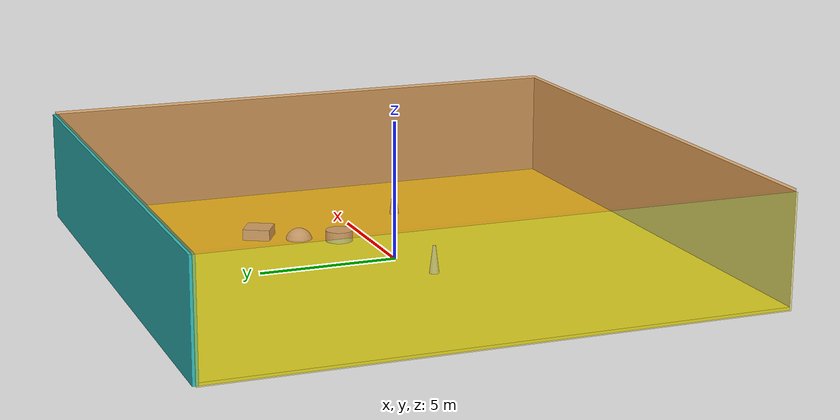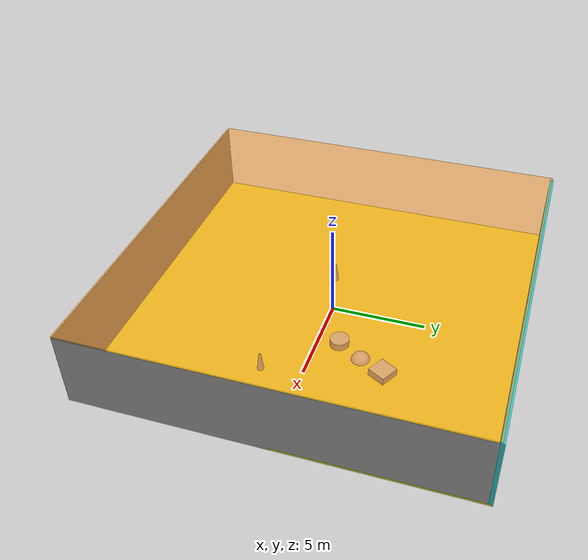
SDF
<sdf version="1.4">
 <world name="default">
  <physics type="ode">
   <max_step_size>0.001</max_step_size>
   <real_time_factor>1</real_time_factor>
   <real_time_update_rate>1000</real_time_update_rate>
   <gravity>0 0 -9.8</gravity>
  </physics>
  <scene><ambient>0.4 0.4 0.4 1</ambient><background>0.7 0.7 0.7 1</background><shadows>1</shadows></scene>
  <model name="Surrounding">
   <static>1</static>
   <link name="Ceiling">
    <collision name="Ceiling_Collision"><geometry><box><size>20 20 0.1</size></box></geometry></collision>
    <visual name="Ceiling_Visual">
     <geometry><box><size>20 20 0.1</size></box></geometry>
     <material>
      <script>
       <uri>file://media/materials/scripts/gazebo.material</uri>
       <name>Gazebo/OrangeTransparent</name>
      </script>
     </material>
    </visual>
    <pose>0 0 4.05 0 0 0</pose>
   </link>
   <link name="Wall_South">
    <collision name="Wall_South_Collision">
     <geometry><box><size>20 0 4</size></box></geometry>
     <pose>0 0 2 0 -0 0</pose>
    </collision>
    <visual name="Wall_South_Visual">
     <pose>0 0 2 0 -0 0</pose>
     <geometry><box><size>20 0 4</size></box></geometry>
     <material>
      <script><uri>file://media/materials/scripts/gazebo.material</uri><name>Gazebo/JointAnchor</name></script>
     </material>
    </visual>
    <velocity_decay><linear>0</linear><angular>0</angular></velocity_decay>
    <pose>0 -10 0 0 -0 0</pose>
   </link>
   <link name="Wall_East">
    <collision name="Wall_21_Collision">
     <geometry><box><size>20 0 4</size></box></geometry>
     <pose>0 0 2 0 -0 0</pose>
    </collision>
    <visual name="Wall_21_Visual">
     <pose>0 0 2 0 -0 0</pose>
     <geometry><box><size>20 0 4</size></box></geometry>
     <material>
      <script><uri>file://media/materials/scripts/gazebo.material</uri><name>Gazebo/GreyGradientSky</name></script>
     </material>
    </visual>
    <velocity_decay><linear>0</linear><angular>0</angular></velocity_decay>
    <pose>10 0 0 0 -0 1.5708</pose>
   </link>
   <link name="Wall_North">
    <collision name="Wall_22_Collision">
     <geometry><box><size>20 0.2 4</size></box></geometry>
     <pose>0 0 2 0 -0 0</pose>
    </collision>
    <visual name="Wall_22_Visual">
     <pose>0 0 2 0 -0 0</pose>
     <geometry><box><size>20 0.2 4</size></box></geometry>
     <material>
      <script><uri>file://media/materials/scripts/gazebo.material</uri><name>Gazebo/TurquoiseGlow</name></script>
     </material>
    </visual>
    <velocity_decay><linear>0</linear><angular>0</angular></velocity_decay>
    <pose>0 10 0 0 -0 0</pose>
   </link>
   <link name="Wall_West">
    <collision name="Wall_23_Collision">
     <geometry><box><size>20 0.2 4</size></box></geometry>
     <pose>0 0 2 0 -0 0</pose>
    </collision>
    <visual name="Wall_23_Visual">
     <pose>0 0 2 0 -0 0</pose>
     <geometry><box><size>20 0.2 4</size></box></geometry>
     <material>
      <script>
       <uri>file://media/materials/scripts/gazebo.material</uri>
       <name>Gazebo/YellowTransparent</name>
      </script>
     </material>
    </visual>
    <velocity_decay><linear>0</linear><angular>0</angular></velocity_decay>
    <pose>-10 0 0 0 0 -1.5708</pose>
   </link>
   <link name="Ground_link">
    <collision name="collision">
     <pose>0 0 .05 0 -0 0</pose>
     <geometry><box><size>20 20 0.1</size></box></geometry>
    </collision>
    <visual name="visual">
     <pose>0 0 .05 0 -0 0</pose>
     <geometry><box><size>20 20 0.1</size></box></geometry>
     <material>
      <script><uri>file://media/materials/scripts/gazebo.material</uri><name>Gazebo/Yellow</name></script>
     </material>
    </visual>
   </link>
   <static>1</static>
  </model>
  <spherical_coordinates>
   <surface_model>EARTH_WGS84</surface_model>
   <latitude_deg>0</latitude_deg>
   <longitude_deg>0</longitude_deg>
   <elevation>0</elevation>
   <heading_deg>0</heading_deg>
  </spherical_coordinates>
  <light name="lightball_0" type="diffuse">
   <diffuse>0.8 0.8 0.8 1</diffuse>
   <specular>0.2 0.2 0.2 1</specular>
   <attenuation>
    <range>100</range>
    <constant>0.7</constant>
    <linear>0.01</linear>
    <quadratic>0.001</quadratic>
   </attenuation>
   <direction>-0.5 0.1 -0.9</direction>
   <pose>4.13250086992 -9.06865581308 3.15297989599 0 0 0</pose>
  </light>
  <light name="lightball_1" type="diffuse">
   <diffuse>0.8 0.8 0.8 1</diffuse>
   <specular>0.2 0.2 0.2 1</specular>
   <attenuation>
    <range>100</range>
    <constant>0.7</constant>
    <linear>0.01</linear>
    <quadratic>0.001</quadratic>
   </attenuation>
   <direction>-0.5 0.1 -0.9</direction>
   <pose>0.103627708255 -6.96227762163 1.69523670337 0 0 0</pose>
  </light>
  <light name="lightball_2" type="diffuse">
   <diffuse>0.8 0.8 0.8 1</diffuse>
   <specular>0.2 0.2 0.2 1</specular>
   <attenuation>
    <range>100</range>
    <constant>0.7</constant>
    <linear>0.01</linear>
    <quadratic>0.001</quadratic>
   </attenuation>
   <direction>-0.5 0.1 -0.9</direction>
   <pose>0.846825595173 6.54809468704 0.972461108106 0 0 0</pose>
  </light>
  <light name="lightball_3" type="diffuse">
   <diffuse>0.8 0.8 0.8 1</diffuse>
   <specular>0.2 0.2 0.2 1</specular>
   <attenuation>
    <range>100</range>
    <constant>0.7</constant>
    <linear>0.01</linear>
    <quadratic>0.001</quadratic>
   </attenuation>
   <direction>-0.5 0.1 -0.9</direction>
   <pose>2.43598935206 8.06011504763 1.34097500363 0 0 0</pose>
  </light>
  <light name="lightball_4" type="diffuse">
   <diffuse>0.8 0.8 0.8 1</diffuse>
   <specular>0.2 0.2 0.2 1</specular>
   <attenuation>
    <range>100</range>
    <constant>0.7</constant>
    <linear>0.01</linear>
    <quadratic>0.001</quadratic>
   </attenuation>
   <direction>-0.5 0.1 -0.9</direction>
   <pose>7.65907975723 -9.6240786297 1.64813388096 0 0 0</pose>
  </light>
  <light name="lightball_5" type="diffuse">
   <diffuse>0.8 0.8 0.8 1</diffuse>
   <specular>0.2 0.2 0.2 1</specular>
   <attenuation>
    <range>100</range>
    <constant>0.7</constant>
    <linear>0.01</linear>
    <quadratic>0.001</quadratic>
   </attenuation>
   <direction>-0.5 0.1 -0.9</direction>
   <pose>7.27335062799 -7.70760050831 0.632443971741 0 0 0</pose>
  </light>
  <light name="lightball_6" type="diffuse">
   <diffuse>0.8 0.8 0.8 1</diffuse>
   <specular>0.2 0.2 0.2 1</specular>
   <attenuation>
    <range>100</range>
    <constant>0.7</constant>
    <linear>0.01</linear>
    <quadratic>0.001</quadratic>
   </attenuation>
   <direction>-0.5 0.1 -0.9</direction>
   <pose>-8.12853397904 -3.5031093716 1.10307598453 0 0 0</pose>
  </light>
  <include>
   <uri>model://construction_cone</uri>
   <pose>-2.34243757154 -0.566616751042 0 0 0 0.331776608607</pose>
  </include>
  <include>
   <uri>model://construction_cone</uri>
   <pose>5.44294962448 -2.0367932937 0 0 0 3.10315910396</pose>
  </include>
  <include>
   <uri>model://textured_shapes</uri>
   <pose>3.36903320317 2.48829823031 0 0 0 2.63858434904</pose>
  </include>
 </world>
</sdf>

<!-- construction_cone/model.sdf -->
<sdf version="1.5">
  <model name="Construction Cone">
    <link name="link">
      <collision name="collision">
        <geometry>
          <mesh>
            <scale>10 10 10</scale>
            <uri>file://isr-testbed/construction_cone/meshes/construction_cone.dae</uri>
          </mesh>
        </geometry>
      </collision>
      <visual name="visual">
        <geometry>
          <mesh>
            <scale>10 10 10</scale>
            <uri>file://isr-testbed/construction_cone/meshes/construction_cone.dae</uri>
          </mesh>
        </geometry>
      </visual>
    </link>
  </model>
</sdf>

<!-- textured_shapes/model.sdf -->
<sdf version="1.6">
  <model name="textured_shapes">
    <pose>0 0 0.5 0 0 0</pose>
    <link name="box">
      <pose>0 -1.5 0 0 0 0</pose>
      <collision name="collision">
        <geometry>
          <box>
            <size>1 1 1</size>
          </box>
        </geometry>
      </collision>
      <visual name="visual">
        <geometry>
          <box>
            <size>1 1 1</size>
          </box>
        </geometry>
        <material>
          <script>
            <uri>model://../model_source/models/textured_shapes/materials/scripts</uri>
            <uri>model://../model_source/models/textured_shapes/materials/textures</uri>
            <name>TexturedShape/Squares</name>
          </script>
        </material>
      </visual>
    </link>
    <link name="sphere">
      <collision name="collision">
        <geometry>
          <sphere>
            <radius>0.5</radius>
          </sphere>
        </geometry>
      </collision>
      <visual name="visual">
        <geometry>
          <sphere>
            <radius>0.5</radius>
          </sphere>
        </geometry>
        <material>
          <script>
            <uri>model://../model_source/models/textured_shapes/materials/scripts</uri>
            <uri>model://../model_source/models/textured_shapes/materials/textures</uri>
            <name>TexturedShape/Squares</name>
          </script>
        </material>
      </visual>
    </link>
    <link name="cylinder">
      <pose>0 1.5 0 0 0 0</pose>
      <collision name="collision">
        <geometry>
          <cylinder>
            <radius>0.5</radius>
            <length>1</length>
          </cylinder>
        </geometry>
      </collision>
      <visual name="visual">
        <geometry>
          <cylinder>
            <radius>0.5</radius>
            <length>1</length>
          </cylinder>
        </geometry>
        <material>
          <script>
            <uri>model://../model_source/models/textured_shapes/materials/scripts</uri>
            <uri>model://../model_source/models/textured_shapes/materials/textures</uri>
            <name>TexturedShape/Squares</name>
          </script>
        </material>
      </visual>
    </link>
  </model>
</sdf>
